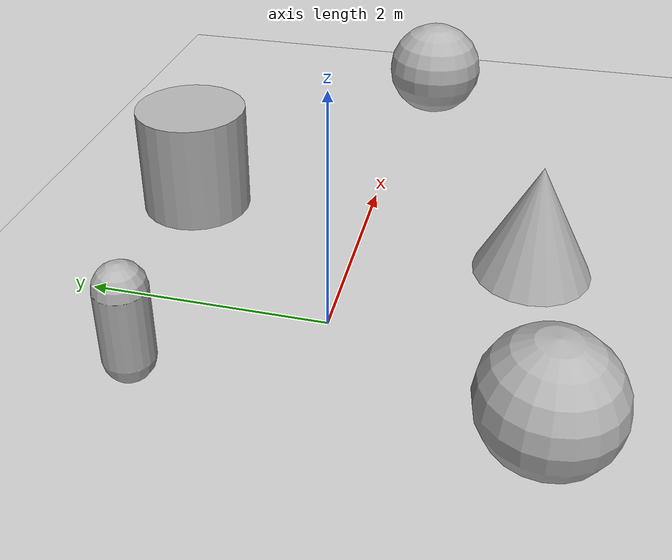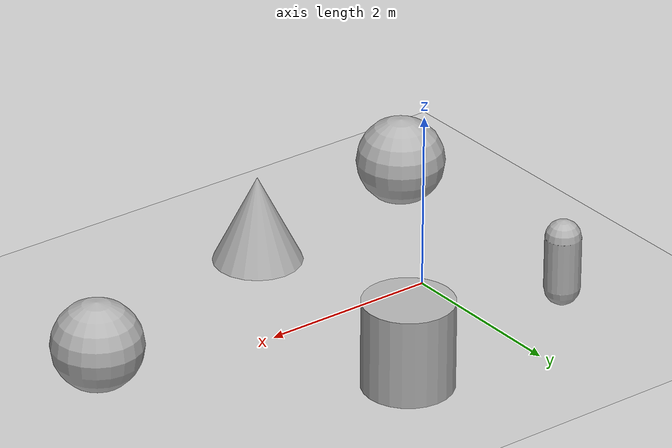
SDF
<sdf version='1.10'>
  <world name='empty'>
    <physics name='1ms' type='ignored'>
      <max_step_size>0.001</max_step_size>
      <real_time_factor>1</real_time_factor>
      <real_time_update_rate>1000</real_time_update_rate>
    </physics>
    <plugin name='gz::sim::systems::Physics' filename='gz-sim-physics-system'/>
    <plugin name='gz::sim::systems::UserCommands' filename='gz-sim-user-commands-system'/>
    <plugin name='gz::sim::systems::SceneBroadcaster' filename='gz-sim-scene-broadcaster-system'/>
    <plugin name='gz::sim::systems::Sensors' filename='gz-sim-sensors-system'>
      <render_engine>ogre2</render_engine>
    </plugin>
    <plugin name='gz::sim::systems::Contact' filename='gz-sim-contact-system'/>
    <gravity>0 0 -9.8000000000000007</gravity>
    <magnetic_field>5.5644999999999998e-06 2.2875799999999999e-05 -4.2388400000000002e-05</magnetic_field>
    <atmosphere type='adiabatic'/>
    <scene>
      <ambient>0.400000006 0.400000006 0.400000006 1</ambient>
      <background>0.699999988 0.699999988 0.699999988 1</background>
      <shadows>true</shadows>
    </scene>
    <model name='ground_plane'>
      <static>true</static>
      <link name='link'>
        <collision name='collision'>
          <geometry>
            <plane>
              <normal>0 0 1</normal>
              <size>100 100</size>
            </plane>
          </geometry>
          <surface>
            <friction>
              <ode/>
            </friction>
            <bounce/>
            <contact/>
          </surface>
        </collision>
        <visual name='visual'>
          <geometry>
            <plane>
              <normal>0 0 1</normal>
              <size>100 100</size>
            </plane>
          </geometry>
          <material>
            <ambient>0.800000012 0.800000012 0.800000012 1</ambient>
            <diffuse>0.800000012 0.800000012 0.800000012 1</diffuse>
            <specular>0.800000012 0.800000012 0.800000012 1</specular>
          </material>
        </visual>
        <pose>0 0 0 0 0 0</pose>
        <inertial>
          <pose>0 0 0 0 0 0</pose>
          <mass>1</mass>
          <inertia>
            <ixx>1</ixx>
            <ixy>0</ixy>
            <ixz>0</ixz>
            <iyy>1</iyy>
            <iyz>0</iyz>
            <izz>1</izz>
          </inertia>
        </inertial>
        <enable_wind>false</enable_wind>
      </link>
      <pose>0 0 0 0 0 0</pose>
      <self_collide>false</self_collide>
    </model>
    <model name='cone'>
      <pose>1.0936720458774896 -1.5195078893518958 0.49999999993296756 5.2537814305601094e-17 -7.7132841037180302e-10 -1.130554266108364e-22</pose>
      <link name='cone_link'>
        <inertial>
          <inertia>
            <ixx>0.074999999999999997</ixx>
            <ixy>0</ixy>
            <ixz>0</ixz>
            <iyy>0.074999999999999997</iyy>
            <iyz>0</iyz>
            <izz>0.074999999999999997</izz>
          </inertia>
          <mass>1</mass>
          <pose>0 0 0 0 0 0</pose>
        </inertial>
        <collision name='cone_collision'>
          <geometry>
            <cone>
              <radius>0.5</radius>
              <length>1</length>
            </cone>
          </geometry>
          <surface>
            <friction>
              <ode/>
            </friction>
            <bounce/>
            <contact/>
          </surface>
        </collision>
        <visual name='cone_visual'>
          <geometry>
            <cone>
              <radius>0.5</radius>
              <length>1</length>
            </cone>
          </geometry>
          <material>
            <ambient>0.300000012 0.300000012 0.300000012 1</ambient>
            <diffuse>0.699999988 0.699999988 0.699999988 1</diffuse>
            <specular>1 1 1 1</specular>
          </material>
        </visual>
        <pose>0 0 0 0 0 0</pose>
        <enable_wind>false</enable_wind>
      </link>
      <static>false</static>
      <self_collide>false</self_collide>
    </model>
    <model name='cylinder'>
      <pose>1.479841374270884 1.6406734762252482 0.49999942638036005 -4.5994145045658423e-20 -1.0826608915287328e-19 2.0751891086761849e-20</pose>
      <link name='cylinder_link'>
        <inertial>
          <inertia>
            <ixx>0.14580000000000001</ixx>
            <ixy>0</ixy>
            <ixz>0</ixz>
            <iyy>0.14580000000000001</iyy>
            <iyz>0</iyz>
            <izz>0.125</izz>
          </inertia>
          <mass>1</mass>
          <pose>0 0 0 0 0 0</pose>
        </inertial>
        <collision name='cylinder_collision'>
          <geometry>
            <cylinder>
              <radius>0.5</radius>
              <length>1</length>
            </cylinder>
          </geometry>
          <surface>
            <friction>
              <ode/>
            </friction>
            <bounce/>
            <contact/>
          </surface>
        </collision>
        <visual name='cylinder_visual'>
          <geometry>
            <cylinder>
              <radius>0.5</radius>
              <length>1</length>
            </cylinder>
          </geometry>
          <material>
            <ambient>0.300000012 0.300000012 0.300000012 1</ambient>
            <diffuse>0.699999988 0.699999988 0.699999988 1</diffuse>
            <specular>1 1 1 1</specular>
          </material>
        </visual>
        <pose>0 0 0 0 0 0</pose>
        <enable_wind>false</enable_wind>
      </link>
      <static>false</static>
      <self_collide>false</self_collide>
    </model>
    <model name='capsule'>
      <pose>-0.92122637739697399 1.2395588478008097 0.499999999902001 0 0 0</pose>
      <link name='capsule_link'>
        <inertial>
          <inertia>
            <ixx>0.074153999999999998</ixx>
            <ixy>0</ixy>
            <ixz>0</ixz>
            <iyy>0.074153999999999998</iyy>
            <iyz>0</iyz>
            <izz>0.018769000000000001</izz>
          </inertia>
          <mass>1</mass>
          <pose>0 0 0 0 0 0</pose>
        </inertial>
        <collision name='capsule_collision'>
          <geometry>
            <capsule>
              <radius>0.20000000000000001</radius>
              <length>0.59999999999999998</length>
            </capsule>
          </geometry>
          <surface>
            <friction>
              <ode/>
            </friction>
            <bounce/>
            <contact/>
          </surface>
        </collision>
        <visual name='capsule_visual'>
          <geometry>
            <capsule>
              <radius>0.20000000000000001</radius>
              <length>0.59999999999999998</length>
            </capsule>
          </geometry>
          <material>
            <ambient>0.300000012 0.300000012 0.300000012 1</ambient>
            <diffuse>0.699999988 0.699999988 0.699999988 1</diffuse>
            <specular>1 1 1 1</specular>
          </material>
        </visual>
        <pose>0 0 0 0 0 0</pose>
        <enable_wind>false</enable_wind>
      </link>
      <static>false</static>
      <self_collide>false</self_collide>
    </model>
    <model name='sphere'>
      <pose>-1.0063939430650324 -1.6865761501723431 0.499999999902001 0 0 0</pose>
      <link name='sphere_link'>
        <inertial>
          <inertia>
            <ixx>0.10000000000000001</ixx>
            <ixy>0</ixy>
            <ixz>0</ixz>
            <iyy>0.10000000000000001</iyy>
            <iyz>0</iyz>
            <izz>0.10000000000000001</izz>
          </inertia>
          <mass>1</mass>
          <pose>0 0 0 0 0 0</pose>
        </inertial>
        <collision name='sphere_collision'>
          <geometry>
            <sphere>
              <radius>0.5</radius>
            </sphere>
          </geometry>
          <surface>
            <friction>
              <ode/>
            </friction>
            <bounce/>
            <contact/>
          </surface>
        </collision>
        <visual name='sphere_visual'>
          <geometry>
            <sphere>
              <radius>0.5</radius>
            </sphere>
          </geometry>
          <material>
            <ambient>0.300000012 0.300000012 0.300000012 1</ambient>
            <diffuse>0.699999988 0.699999988 0.699999988 1</diffuse>
            <specular>1 1 1 1</specular>
          </material>
        </visual>
        <pose>0 0 0 0 0 0</pose>
        <enable_wind>false</enable_wind>
      </link>
      <static>false</static>
      <self_collide>false</self_collide>
    </model>
    <model name='sphere_0'>
      <pose>4.0781041333938521 -0.25613550193586376 0.499999999902001 0 0 0</pose>
      <link name='sphere_link'>
        <inertial>
          <inertia>
            <ixx>0.10000000000000001</ixx>
            <ixy>0</ixy>
            <ixz>0</ixz>
            <iyy>0.10000000000000001</iyy>
            <iyz>0</iyz>
            <izz>0.10000000000000001</izz>
          </inertia>
          <mass>1</mass>
          <pose>0 0 0 0 0 0</pose>
        </inertial>
        <collision name='sphere_collision'>
          <geometry>
            <sphere>
              <radius>0.5</radius>
            </sphere>
          </geometry>
          <surface>
            <friction>
              <ode/>
            </friction>
            <bounce/>
            <contact/>
          </surface>
        </collision>
        <visual name='sphere_visual'>
          <geometry>
            <sphere>
              <radius>0.5</radius>
            </sphere>
          </geometry>
          <material>
            <ambient>0.300000012 0.300000012 0.300000012 1</ambient>
            <diffuse>0.699999988 0.699999988 0.699999988 1</diffuse>
            <specular>1 1 1 1</specular>
          </material>
        </visual>
        <pose>0 0 0 0 0 0</pose>
        <enable_wind>false</enable_wind>
      </link>
      <static>false</static>
      <self_collide>false</self_collide>
    </model>
    <light name='sun' type='directional'>
      <pose>0 0 10 0 0 0</pose>
      <cast_shadows>true</cast_shadows>
      <intensity>1</intensity>
      <direction>-0.5 0.10000000000000001 -0.90000000000000002</direction>
      <diffuse>0.800000012 0.800000012 0.800000012 1</diffuse>
      <specular>0.200000003 0.200000003 0.200000003 1</specular>
      <attenuation>
        <range>1000</range>
        <linear>0.01</linear>
        <constant>0.90000000000000002</constant>
        <quadratic>0.001</quadratic>
      </attenuation>
      <spot>
        <inner_angle>0</inner_angle>
        <outer_angle>0</outer_angle>
        <falloff>0</falloff>
      </spot>
    </light>
  </world>
</sdf>
